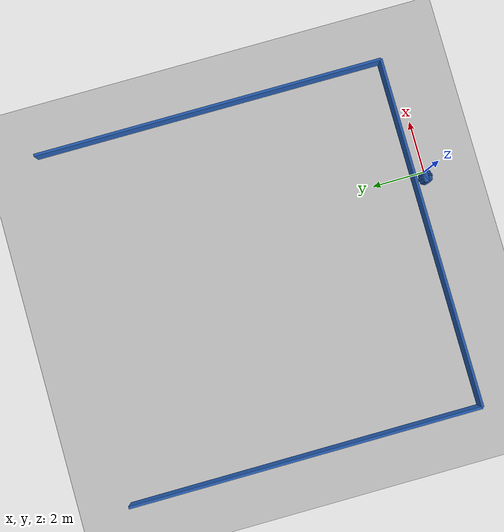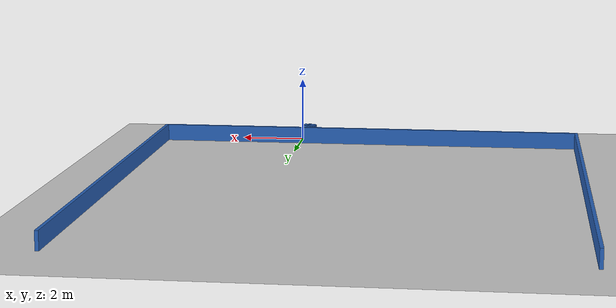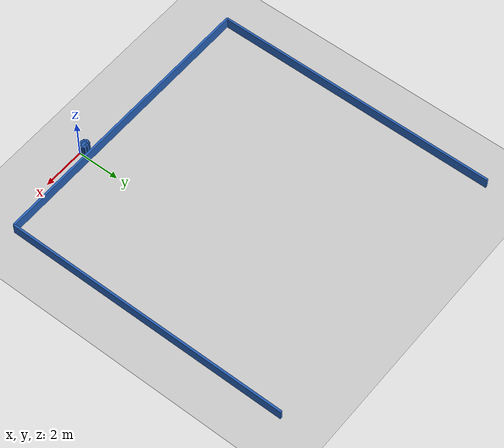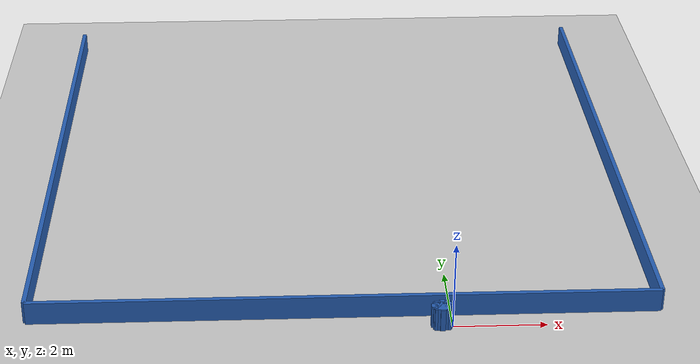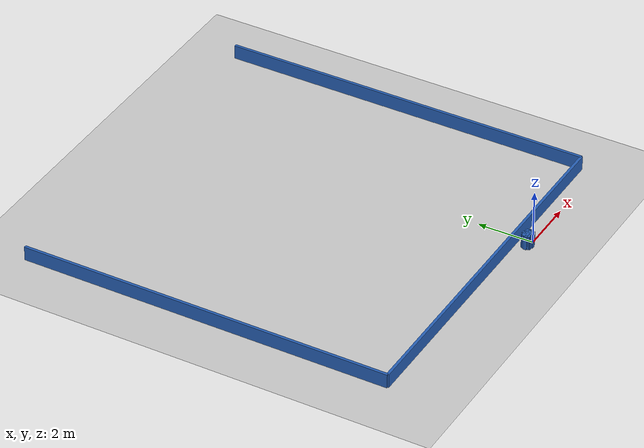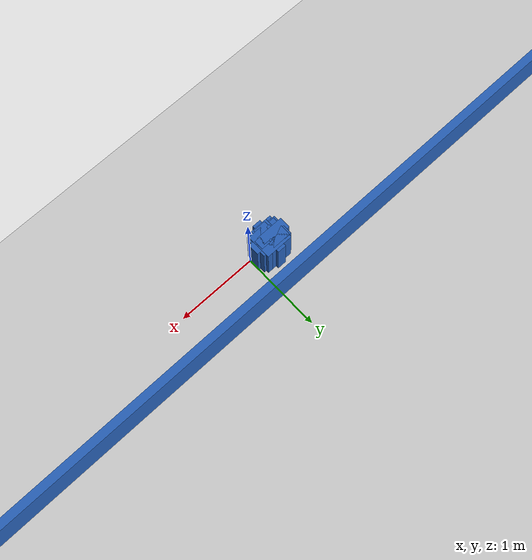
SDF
<?xml version="1.0" ?>
    <sdf version="1.5">
      <world name="default">
        <!-- A global light source -->
        <include>
          <uri>model://sun</uri>
        </include>
        <!-- A ground plane -->
        <include>
          <uri>model://ground_plane</uri>
        </include>

    <model name='libopen_space_final_T2B_51_63'>
      <static>1</static>
      <pose frame=''>-0.225000 0.075000 0.000000 0.000000 0.000000 0.000000</pose>
      <link name='link'>
        <inertial>
          <mass>1</mass>
          <inertia>
            <ixx>0.145833</ixx>
            <ixy>0</ixy>
            <ixz>0</ixz>
            <iyy>0.145833</iyy>
            <iyz>0</iyz>
            <izz>0.125</izz>
          </inertia>
        </inertial>
        <collision name='collision'>
          <geometry>
            <box>
              <size>0.36 0.25 1</size>
            </box>
          </geometry>
          <max_contacts>10</max_contacts>
          <surface>
            <contact>
              <ode/>
            </contact>
            <bounce/>
            <friction>
              <torsional>
                <ode/>
              </torsional>
              <ode/>
            </friction>
          </surface>
        </collision>
        <visual name='visual'>
          <geometry>
            <box>
              <size>0.36 0.25 1</size>
            </box>
          </geometry>
	    <material>
              <ambient>0.152000 0.379000 0.720000 1</ambient>
	      <diffuse>0.152000 0.379000 0.720000 1</diffuse>
          </material>
          <material>
            <script>
              <name>Gazebo/Grey</name>
              <uri>file://media/materials/scripts/gazebo.material</uri>
            </script>
          </material>
        </visual>
        <self_collide>0</self_collide>
        <kinematic>0</kinematic>
        <gravity>1</gravity>
      </link>
      <plugin name='libopen_space_final_T2B_51_63' filename='libopen_space_final_T2B_51_63.so'/>
    </model>

    <model name='libopen_space_final_T2B_81_4'>
      <static>1</static>
      <pose frame=''>-0.225000 0.075000 0.000000 0.000000 0.000000 0.000000</pose>
      <link name='link'>
        <inertial>
          <mass>1</mass>
          <inertia>
            <ixx>0.145833</ixx>
            <ixy>0</ixy>
            <ixz>0</ixz>
            <iyy>0.145833</iyy>
            <iyz>0</iyz>
            <izz>0.125</izz>
          </inertia>
        </inertial>
        <collision name='collision'>
          <geometry>
            <box>
              <size>0.34 0.34 1</size>
            </box>
          </geometry>
          <max_contacts>10</max_contacts>
          <surface>
            <contact>
              <ode/>
            </contact>
            <bounce/>
            <friction>
              <torsional>
                <ode/>
              </torsional>
              <ode/>
            </friction>
          </surface>
        </collision>
        <visual name='visual'>
          <geometry>
            <box>
              <size>0.34 0.34 1</size>
            </box>
          </geometry>
	    <material>
              <ambient>0.152000 0.379000 0.720000 1</ambient>
	      <diffuse>0.152000 0.379000 0.720000 1</diffuse>
          </material>
          <material>
            <script>
              <name>Gazebo/Grey</name>
              <uri>file://media/materials/scripts/gazebo.material</uri>
            </script>
          </material>
        </visual>
        <self_collide>0</self_collide>
        <kinematic>0</kinematic>
        <gravity>1</gravity>
      </link>
      <plugin name='libopen_space_final_T2B_81_4' filename='libopen_space_final_T2B_81_4.so'/>
    </model>

    <model name='libopen_space_final_T2B_79_93'>
      <static>1</static>
      <pose frame=''>-0.225000 0.075000 0.000000 0.000000 0.000000 0.000000</pose>
      <link name='link'>
        <inertial>
          <mass>1</mass>
          <inertia>
            <ixx>0.145833</ixx>
            <ixy>0</ixy>
            <ixz>0</ixz>
            <iyy>0.145833</iyy>
            <iyz>0</iyz>
            <izz>0.125</izz>
          </inertia>
        </inertial>
        <collision name='collision'>
          <geometry>
            <box>
              <size>0.11 0.41 1</size>
            </box>
          </geometry>
          <max_contacts>10</max_contacts>
          <surface>
            <contact>
              <ode/>
            </contact>
            <bounce/>
            <friction>
              <torsional>
                <ode/>
              </torsional>
              <ode/>
            </friction>
          </surface>
        </collision>
        <visual name='visual'>
          <geometry>
            <box>
              <size>0.11 0.41 1</size>
            </box>
          </geometry>
	    <material>
              <ambient>0.152000 0.379000 0.720000 1</ambient>
	      <diffuse>0.152000 0.379000 0.720000 1</diffuse>
          </material>
          <material>
            <script>
              <name>Gazebo/Grey</name>
              <uri>file://media/materials/scripts/gazebo.material</uri>
            </script>
          </material>
        </visual>
        <self_collide>0</self_collide>
        <kinematic>0</kinematic>
        <gravity>1</gravity>
      </link>
      <plugin name='libopen_space_final_T2B_79_93' filename='libopen_space_final_T2B_79_93.so'/>
    </model>

    <model name='libopen_space_final_T2B_111_12'>
      <static>1</static>
      <pose frame=''>-0.225000 0.075000 0.000000 0.000000 0.000000 0.000000</pose>
      <link name='link'>
        <inertial>
          <mass>1</mass>
          <inertia>
            <ixx>0.145833</ixx>
            <ixy>0</ixy>
            <ixz>0</ixz>
            <iyy>0.145833</iyy>
            <iyz>0</iyz>
            <izz>0.125</izz>
          </inertia>
        </inertial>
        <collision name='collision'>
          <geometry>
            <box>
              <size>0.34 0.28 1</size>
            </box>
          </geometry>
          <max_contacts>10</max_contacts>
          <surface>
            <contact>
              <ode/>
            </contact>
            <bounce/>
            <friction>
              <torsional>
                <ode/>
              </torsional>
              <ode/>
            </friction>
          </surface>
        </collision>
        <visual name='visual'>
          <geometry>
            <box>
              <size>0.34 0.28 1</size>
            </box>
          </geometry>
	    <material>
              <ambient>0.152000 0.379000 0.720000 1</ambient>
	      <diffuse>0.152000 0.379000 0.720000 1</diffuse>
          </material>
          <material>
            <script>
              <name>Gazebo/Grey</name>
              <uri>file://media/materials/scripts/gazebo.material</uri>
            </script>
          </material>
        </visual>
        <self_collide>0</self_collide>
        <kinematic>0</kinematic>
        <gravity>1</gravity>
      </link>
      <plugin name='libopen_space_final_T2B_111_12' filename='libopen_space_final_T2B_111_12.so'/>
    </model>

    <model name='libopen_space_final_T2B_119_99'>
      <static>1</static>
      <pose frame=''>-0.225000 0.075000 0.000000 0.000000 0.000000 0.000000</pose>
      <link name='link'>
        <inertial>
          <mass>1</mass>
          <inertia>
            <ixx>0.145833</ixx>
            <ixy>0</ixy>
            <ixz>0</ixz>
            <iyy>0.145833</iyy>
            <iyz>0</iyz>
            <izz>0.125</izz>
          </inertia>
        </inertial>
        <collision name='collision'>
          <geometry>
            <box>
              <size>0.31 0.12 1</size>
            </box>
          </geometry>
          <max_contacts>10</max_contacts>
          <surface>
            <contact>
              <ode/>
            </contact>
            <bounce/>
            <friction>
              <torsional>
                <ode/>
              </torsional>
              <ode/>
            </friction>
          </surface>
        </collision>
        <visual name='visual'>
          <geometry>
            <box>
              <size>0.31 0.12 1</size>
            </box>
          </geometry>
	    <material>
              <ambient>0.152000 0.379000 0.720000 1</ambient>
	      <diffuse>0.152000 0.379000 0.720000 1</diffuse>
          </material>
          <material>
            <script>
              <name>Gazebo/Grey</name>
              <uri>file://media/materials/scripts/gazebo.material</uri>
            </script>
          </material>
        </visual>
        <self_collide>0</self_collide>
        <kinematic>0</kinematic>
        <gravity>1</gravity>
      </link>
      <plugin name='libopen_space_final_T2B_119_99' filename='libopen_space_final_T2B_119_99.so'/>
    </model>

    <model name='libopen_space_final_T2B_122_30'>
      <static>1</static>
      <pose frame=''>-0.225000 0.075000 0.000000 0.000000 0.000000 0.000000</pose>
      <link name='link'>
        <inertial>
          <mass>1</mass>
          <inertia>
            <ixx>0.145833</ixx>
            <ixy>0</ixy>
            <ixz>0</ixz>
            <iyy>0.145833</iyy>
            <iyz>0</iyz>
            <izz>0.125</izz>
          </inertia>
        </inertial>
        <collision name='collision'>
          <geometry>
            <box>
              <size>0.22 0.34 1</size>
            </box>
          </geometry>
          <max_contacts>10</max_contacts>
          <surface>
            <contact>
              <ode/>
            </contact>
            <bounce/>
            <friction>
              <torsional>
                <ode/>
              </torsional>
              <ode/>
            </friction>
          </surface>
        </collision>
        <visual name='visual'>
          <geometry>
            <box>
              <size>0.22 0.34 1</size>
            </box>
          </geometry>
	    <material>
              <ambient>0.152000 0.379000 0.720000 1</ambient>
	      <diffuse>0.152000 0.379000 0.720000 1</diffuse>
          </material>
          <material>
            <script>
              <name>Gazebo/Grey</name>
              <uri>file://media/materials/scripts/gazebo.material</uri>
            </script>
          </material>
        </visual>
        <self_collide>0</self_collide>
        <kinematic>0</kinematic>
        <gravity>1</gravity>
      </link>
      <plugin name='libopen_space_final_T2B_122_30' filename='libopen_space_final_T2B_122_30.so'/>
    </model>

    <model name='libopen_space_final_T2B_83_17'>
      <static>1</static>
      <pose frame=''>-0.225000 0.075000 0.000000 0.000000 0.000000 0.000000</pose>
      <link name='link'>
        <inertial>
          <mass>1</mass>
          <inertia>
            <ixx>0.145833</ixx>
            <ixy>0</ixy>
            <ixz>0</ixz>
            <iyy>0.145833</iyy>
            <iyz>0</iyz>
            <izz>0.125</izz>
          </inertia>
        </inertial>
        <collision name='collision'>
          <geometry>
            <box>
              <size>0.22 0.34 1</size>
            </box>
          </geometry>
          <max_contacts>10</max_contacts>
          <surface>
            <contact>
              <ode/>
            </contact>
            <bounce/>
            <friction>
              <torsional>
                <ode/>
              </torsional>
              <ode/>
            </friction>
          </surface>
        </collision>
        <visual name='visual'>
          <geometry>
            <box>
              <size>0.22 0.34 1</size>
            </box>
          </geometry>
	    <material>
              <ambient>0.152000 0.379000 0.720000 1</ambient>
	      <diffuse>0.152000 0.379000 0.720000 1</diffuse>
          </material>
          <material>
            <script>
              <name>Gazebo/Grey</name>
              <uri>file://media/materials/scripts/gazebo.material</uri>
            </script>
          </material>
        </visual>
        <self_collide>0</self_collide>
        <kinematic>0</kinematic>
        <gravity>1</gravity>
      </link>
      <plugin name='libopen_space_final_T2B_83_17' filename='libopen_space_final_T2B_83_17.so'/>
    </model>

    <model name='libopen_space_final_T2B_121_6'>
      <static>1</static>
      <pose frame=''>-0.225000 0.075000 0.000000 0.000000 0.000000 0.000000</pose>
      <link name='link'>
        <inertial>
          <mass>1</mass>
          <inertia>
            <ixx>0.145833</ixx>
            <ixy>0</ixy>
            <ixz>0</ixz>
            <iyy>0.145833</iyy>
            <iyz>0</iyz>
            <izz>0.125</izz>
          </inertia>
        </inertial>
        <collision name='collision'>
          <geometry>
            <box>
              <size>0.47 0.14 1</size>
            </box>
          </geometry>
          <max_contacts>10</max_contacts>
          <surface>
            <contact>
              <ode/>
            </contact>
            <bounce/>
            <friction>
              <torsional>
                <ode/>
              </torsional>
              <ode/>
            </friction>
          </surface>
        </collision>
        <visual name='visual'>
          <geometry>
            <box>
              <size>0.47 0.14 1</size>
            </box>
          </geometry>
	    <material>
              <ambient>0.152000 0.379000 0.720000 1</ambient>
	      <diffuse>0.152000 0.379000 0.720000 1</diffuse>
          </material>
          <material>
            <script>
              <name>Gazebo/Grey</name>
              <uri>file://media/materials/scripts/gazebo.material</uri>
            </script>
          </material>
        </visual>
        <self_collide>0</self_collide>
        <kinematic>0</kinematic>
        <gravity>1</gravity>
      </link>
      <plugin name='libopen_space_final_T2B_121_6' filename='libopen_space_final_T2B_121_6.so'/>
    </model>

    <model name='libopen_space_final_T2B_100_36'>
      <static>1</static>
      <pose frame=''>-0.225000 0.075000 0.000000 0.000000 0.000000 0.000000</pose>
      <link name='link'>
        <inertial>
          <mass>1</mass>
          <inertia>
            <ixx>0.145833</ixx>
            <ixy>0</ixy>
            <ixz>0</ixz>
            <iyy>0.145833</iyy>
            <iyz>0</iyz>
            <izz>0.125</izz>
          </inertia>
        </inertial>
        <collision name='collision'>
          <geometry>
            <box>
              <size>0.19 0.20 1</size>
            </box>
          </geometry>
          <max_contacts>10</max_contacts>
          <surface>
            <contact>
              <ode/>
            </contact>
            <bounce/>
            <friction>
              <torsional>
                <ode/>
              </torsional>
              <ode/>
            </friction>
          </surface>
        </collision>
        <visual name='visual'>
          <geometry>
            <box>
              <size>0.19 0.20 1</size>
            </box>
          </geometry>
	    <material>
              <ambient>0.152000 0.379000 0.720000 1</ambient>
	      <diffuse>0.152000 0.379000 0.720000 1</diffuse>
          </material>
          <material>
            <script>
              <name>Gazebo/Grey</name>
              <uri>file://media/materials/scripts/gazebo.material</uri>
            </script>
          </material>
        </visual>
        <self_collide>0</self_collide>
        <kinematic>0</kinematic>
        <gravity>1</gravity>
      </link>
      <plugin name='libopen_space_final_T2B_100_36' filename='libopen_space_final_T2B_100_36.so'/>
    </model>

    <model name='libopen_space_final_T2B_123_13'>
      <static>1</static>
      <pose frame=''>-0.225000 0.075000 0.000000 0.000000 0.000000 0.000000</pose>
      <link name='link'>
        <inertial>
          <mass>1</mass>
          <inertia>
            <ixx>0.145833</ixx>
            <ixy>0</ixy>
            <ixz>0</ixz>
            <iyy>0.145833</iyy>
            <iyz>0</iyz>
            <izz>0.125</izz>
          </inertia>
        </inertial>
        <collision name='collision'>
          <geometry>
            <box>
              <size>0.40 0.27 1</size>
            </box>
          </geometry>
          <max_contacts>10</max_contacts>
          <surface>
            <contact>
              <ode/>
            </contact>
            <bounce/>
            <friction>
              <torsional>
                <ode/>
              </torsional>
              <ode/>
            </friction>
          </surface>
        </collision>
        <visual name='visual'>
          <geometry>
            <box>
              <size>0.40 0.27 1</size>
            </box>
          </geometry>
	    <material>
              <ambient>0.152000 0.379000 0.720000 1</ambient>
	      <diffuse>0.152000 0.379000 0.720000 1</diffuse>
          </material>
          <material>
            <script>
              <name>Gazebo/Grey</name>
              <uri>file://media/materials/scripts/gazebo.material</uri>
            </script>
          </material>
        </visual>
        <self_collide>0</self_collide>
        <kinematic>0</kinematic>
        <gravity>1</gravity>
      </link>
      <plugin name='libopen_space_final_T2B_123_13' filename='libopen_space_final_T2B_123_13.so'/>
    </model>

    <model name='libopen_space_final_T2B_67_46'>
      <static>1</static>
      <pose frame=''>-0.225000 0.075000 0.000000 0.000000 0.000000 0.000000</pose>
      <link name='link'>
        <inertial>
          <mass>1</mass>
          <inertia>
            <ixx>0.145833</ixx>
            <ixy>0</ixy>
            <ixz>0</ixz>
            <iyy>0.145833</iyy>
            <iyz>0</iyz>
            <izz>0.125</izz>
          </inertia>
        </inertial>
        <collision name='collision'>
          <geometry>
            <box>
              <size>0.16 0.32 1</size>
            </box>
          </geometry>
          <max_contacts>10</max_contacts>
          <surface>
            <contact>
              <ode/>
            </contact>
            <bounce/>
            <friction>
              <torsional>
                <ode/>
              </torsional>
              <ode/>
            </friction>
          </surface>
        </collision>
        <visual name='visual'>
          <geometry>
            <box>
              <size>0.16 0.32 1</size>
            </box>
          </geometry>
	    <material>
              <ambient>0.152000 0.379000 0.720000 1</ambient>
	      <diffuse>0.152000 0.379000 0.720000 1</diffuse>
          </material>
          <material>
            <script>
              <name>Gazebo/Grey</name>
              <uri>file://media/materials/scripts/gazebo.material</uri>
            </script>
          </material>
        </visual>
        <self_collide>0</self_collide>
        <kinematic>0</kinematic>
        <gravity>1</gravity>
      </link>
      <plugin name='libopen_space_final_T2B_67_46' filename='libopen_space_final_T2B_67_46.so'/>
    </model>

        <model name='bottom_wall'>
          <static>1</static>
          <pose frame=''>-2.25 0.5 0.000000 0.000000 0.000000 1.57079632</pose>
          <link name='link'>
            <inertial>
            <mass>1</mass>
            <inertia>
              <ixx>0.145833</ixx>
              <ixy>0</ixy>
              <ixz>0</ixz>
              <iyy>0.145833</iyy>
              <iyz>0</iyz>
              <izz>0.125</izz>
            </inertia>
            </inertial>
            <collision name='collision'>
            <geometry>
              <box>
              <size>0.1 13.5 1</size>
              </box>
            </geometry>
            <max_contacts>10</max_contacts>
            <surface>
              <contact>
              <ode/>
              </contact>
              <bounce/>
              <friction>
              <torsional>
                <ode/>
              </torsional>
              <ode/>
              </friction>
            </surface>
            </collision>
            <visual name='visual'>
            <geometry>
              <box>
              <size>0.1 13.5 1</size>
              </box>
            </geometry>
            <material>
              <ambient>0.152000 0.379000 0.720000 1</ambient>
            <diffuse>0.152000 0.379000 0.720000 1</diffuse>
            </material>
            <material>
              <script>
              <name>Gazebo/Grey</name>
              <uri>file://media/materials/scripts/gazebo.material</uri>
              </script>
            </material>
            </visual>
            <self_collide>0</self_collide>
            <kinematic>0</kinematic>
            <gravity>1</gravity>
          </link>
        </model>

        <model name='left_wall'>
          <static>1</static>
          <pose frame=''>-9 7.25 0.000000 0.000000 0.000000 0.000000</pose>
          <link name='link'>
            <inertial>
            <mass>1</mass>
            <inertia>
              <ixx>0.145833</ixx>
              <ixy>0</ixy>
              <ixz>0</ixz>
              <iyy>0.145833</iyy>
              <iyz>0</iyz>
              <izz>0.125</izz>
            </inertia>
            </inertial>
            <collision name='collision'>
            <geometry>
              <box>
              <size>0.1 13.5 1</size>
              </box>
            </geometry>
            <max_contacts>10</max_contacts>
            <surface>
              <contact>
              <ode/>
              </contact>
              <bounce/>
              <friction>
              <torsional>
                <ode/>
              </torsional>
              <ode/>
              </friction>
            </surface>
            </collision>
            <visual name='visual'>
            <geometry>
              <box>
              <size>0.1 13.5 1</size>
              </box>
            </geometry>
            <material>
              <ambient>0.152000 0.379000 0.720000 1</ambient>
            <diffuse>0.152000 0.379000 0.720000 1</diffuse>
            </material>
            <material>
              <script>
              <name>Gazebo/Grey</name>
              <uri>file://media/materials/scripts/gazebo.material</uri>
              </script>
            </material>
            </visual>
            <self_collide>0</self_collide>
            <kinematic>0</kinematic>
            <gravity>1</gravity>
          </link>
        </model>

        <model name='right_wall'>
          <static>1</static>
          <pose frame=''>4.5 7.25 0.000000 0.000000 0.000000 0.000000</pose>
          <link name='link'>
            <inertial>
            <mass>1</mass>
            <inertia>
              <ixx>0.145833</ixx>
              <ixy>0</ixy>
              <ixz>0</ixz>
              <iyy>0.145833</iyy>
              <iyz>0</iyz>
              <izz>0.125</izz>
            </inertia>
            </inertial>
            <collision name='collision'>
            <geometry>
              <box>
              <size>0.1 13.5 1</size>
              </box>
            </geometry>
            <max_contacts>10</max_contacts>
            <surface>
              <contact>
              <ode/>
              </contact>
              <bounce/>
              <friction>
              <torsional>
                <ode/>
              </torsional>
              <ode/>
              </friction>
            </surface>
            </collision>
            <visual name='visual'>
            <geometry>
              <box>
              <size>0.1 13.5 1</size>
              </box>
            </geometry>
            <material>
              <ambient>0.152000 0.379000 0.720000 1</ambient>
            <diffuse>0.152000 0.379000 0.720000 1</diffuse>
            </material>
            <material>
              <script>
              <name>Gazebo/Grey</name>
              <uri>file://media/materials/scripts/gazebo.material</uri>
              </script>
            </material>
            </visual>
            <self_collide>0</self_collide>
            <kinematic>0</kinematic>
            <gravity>1</gravity>
          </link>
        </model>

      </world>
    </sdf>"
